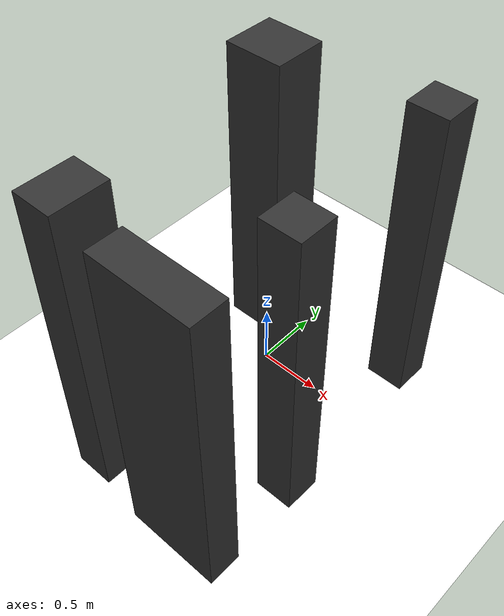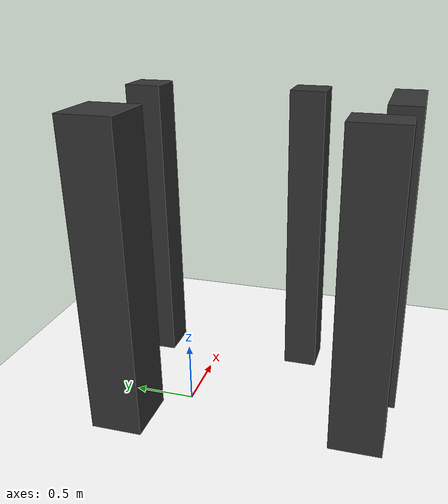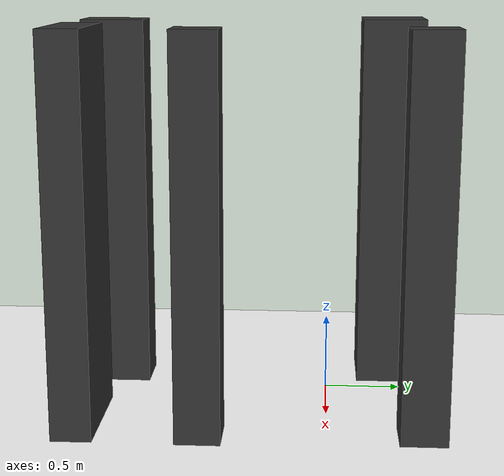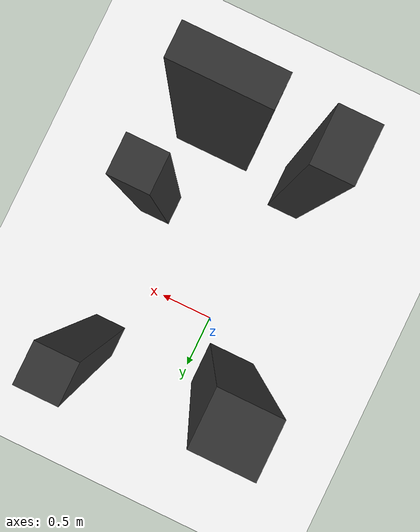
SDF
<?xml version="1.0" ?>
<sdf version="1.8">
  <world name="officemap2_world">
    <gravity>0 0 -9.8</gravity>
    <scene>
      <ambient>0.4 0.4 0.4 1</ambient>
      <background>0.7 0.7 0.7 1</background>
    </scene>
    <!-- Ground plane: pure white (no textures) -->
    <model name="ground_plane">
      <static>true</static>
      <link name="link">
        <collision name="collision">
          <geometry><plane><normal>0 0 1</normal><size>100 100</size></plane></geometry>
        </collision>
        <visual name="visual">
          <geometry><plane><normal>0 0 1</normal><size>100 100</size></plane></geometry>
          <material>
            <diffuse>1 1 1 1</diffuse>
            <ambient>1 1 1 1</ambient>
            <specular>0 0 0 1</specular>
          </material>
        </visual>
      </link>
    </model>

    <model name="wall_219_657">
      <static>true</static>
      <pose>0.8488 0.5935 1.2500 0 0 0.000000</pose>
      <link name="link">
        <collision name="collision">
          <geometry><box><size>0.3078 0.2964 2.5000</size></box></geometry>
        </collision>
        <visual name="visual">
          <geometry><box><size>0.3078 0.2964 2.5000</size></box></geometry>
          <material><ambient>0.2 0.2 0.2 1.0</ambient></material>
        </visual>
      </link>
    </model>

    <model name="wall_238_435">
      <static>true</static>
      <pose>-0.3396 0.4253 1.2500 0 0 0.000000</pose>
      <link name="link">
        <collision name="collision">
          <geometry><box><size>0.4617 0.4161 2.5000</size></box></geometry>
        </collision>
        <visual name="visual">
          <geometry><box><size>0.4617 0.4161 2.5000</size></box></geometry>
          <material><ambient>0.2 0.2 0.2 1.0</ambient></material>
        </visual>
      </link>
    </model>

    <model name="wall_462_668">
      <static>true</static>
      <pose>0.9058 -0.7859 1.2500 0 0 0.000000</pose>
      <link name="link">
        <collision name="collision">
          <geometry><box><size>0.2964 0.2850 2.5000</size></box></geometry>
        </collision>
        <visual name="visual">
          <geometry><box><size>0.2964 0.2850 2.5000</size></box></geometry>
          <material><ambient>0.2 0.2 0.2 1.0</ambient></material>
        </visual>
      </link>
    </model>

    <model name="wall_565_476">
      <static>true</static>
      <pose>-0.1829 -1.4385 1.2500 0 0 0.000000</pose>
      <link name="link">
        <collision name="collision">
          <geometry><box><size>0.3078 0.4161 2.5000</size></box></geometry>
        </collision>
        <visual name="visual">
          <geometry><box><size>0.3078 0.4161 2.5000</size></box></geometry>
          <material><ambient>0.2 0.2 0.2 1.0</ambient></material>
        </visual>
      </link>
    </model>

    <model name="wall_601_588">
      <static>true</static>
      <pose>0.6750 -1.5639 1.2500 0 0 0.000000</pose>
      <link name="link">
        <collision name="collision">
          <geometry><box><size>0.7467 0.2565 2.5000</size></box></geometry>
        </collision>
        <visual name="visual">
          <geometry><box><size>0.7467 0.2565 2.5000</size></box></geometry>
          <material><ambient>0.2 0.2 0.2 1.0</ambient></material>
        </visual>
      </link>
    </model>

  </world>
</sdf>
